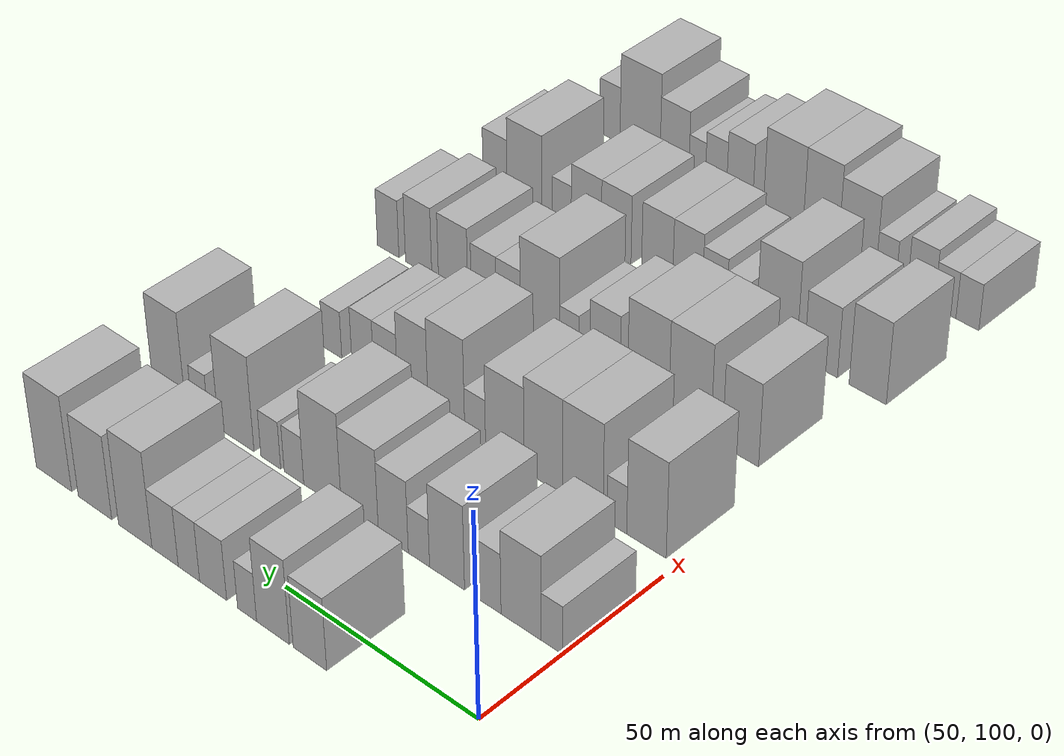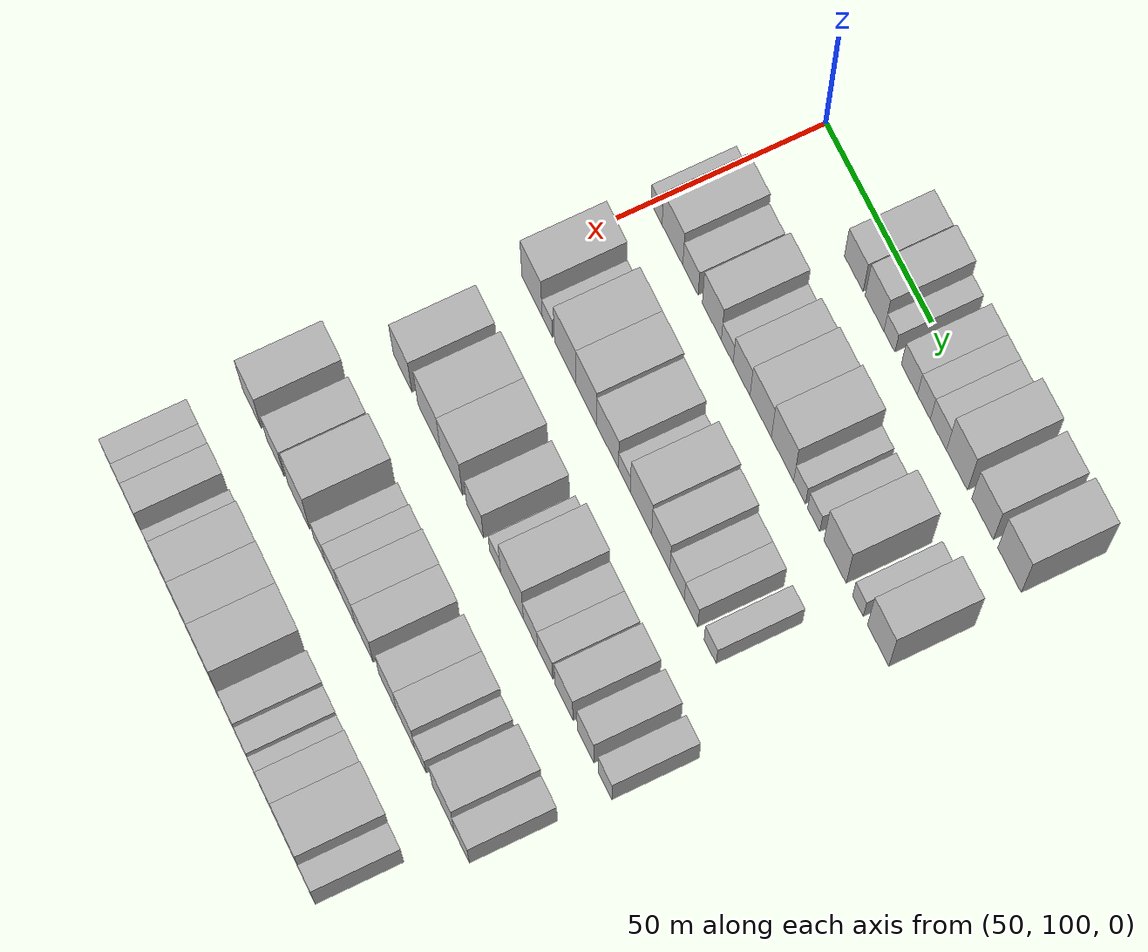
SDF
<sdf version="1.6">
 <world name="default">
  <model name="building_74">
   <static>1</static>
   <pose>50.0000 133.0137 0 0.000000 0.000000 0.000000</pose>
   <link name="link">
    <pose>0 0 9.00 0 0 0</pose>
    <collision name="collision"><geometry><box><size>20.0000 8.8224 18.0000</size></box></geometry></collision>
    <visual name="visual">
     <cast_shadows>0</cast_shadows>
     <geometry><box><size>20.0000 8.8224 18.0000</size></box></geometry>
     <material>
      <script>
       <uri>model://HANNAS_wall/materials/scripts</uri>
       <uri>model://HANNAS_wall/materials/textures</uri>
       <name>vrc/HANNAS_wall</name>
      </script>
     </material>
    </visual>
   </link>
  </model>
  <model name="building_75">
   <static>1</static>
   <pose>50.0000 142.8350 0 0.000000 0.000000 0.000000</pose>
   <link name="link">
    <pose>0 0 10.50 0 0 0</pose>
    <collision name="collision"><geometry><box><size>20.0000 8.8204 21.0000</size></box></geometry></collision>
    <visual name="visual">
     <cast_shadows>0</cast_shadows>
     <geometry><box><size>20.0000 8.8204 21.0000</size></box></geometry>
     <material>
      <script>
       <uri>model://HANNAS_wall/materials/scripts</uri>
       <uri>model://HANNAS_wall/materials/textures</uri>
       <name>vrc/HANNAS_wall</name>
      </script>
     </material>
    </visual>
   </link>
  </model>
  <model name="building_76">
   <static>1</static>
   <pose>50.0000 149.8357 0 0.000000 0.000000 0.000000</pose>
   <link name="link">
    <pose>0 0 6.00 0 0 0</pose>
    <collision name="collision"><geometry><box><size>20.0000 5.1809 12.0000</size></box></geometry></collision>
    <visual name="visual">
     <cast_shadows>0</cast_shadows>
     <geometry><box><size>20.0000 5.1809 12.0000</size></box></geometry>
     <material>
      <script>
       <uri>model://HANNAS_wall/materials/scripts</uri>
       <uri>model://HANNAS_wall/materials/textures</uri>
       <name>vrc/HANNAS_wall</name>
      </script>
     </material>
    </visual>
   </link>
  </model>
  <model name="building_77">
   <static>1</static>
   <pose>50.0000 159.1717 0 0.000000 0.000000 0.000000</pose>
   <link name="link">
    <pose>0 0 7.50 0 0 0</pose>
    <collision name="collision"><geometry><box><size>20.0000 7.4911 15.0000</size></box></geometry></collision>
    <visual name="visual">
     <cast_shadows>0</cast_shadows>
     <geometry><box><size>20.0000 7.4911 15.0000</size></box></geometry>
     <material>
      <script>
       <uri>model://HANNAS_wall/materials/scripts</uri>
       <uri>model://HANNAS_wall/materials/textures</uri>
       <name>vrc/HANNAS_wall</name>
      </script>
     </material>
    </visual>
   </link>
  </model>
  <model name="building_78">
   <static>1</static>
   <pose>50.0000 165.9333 0 0.000000 0.000000 0.000000</pose>
   <link name="link">
    <pose>0 0 7.50 0 0 0</pose>
    <collision name="collision"><geometry><box><size>20.0000 6.0321 15.0000</size></box></geometry></collision>
    <visual name="visual">
     <cast_shadows>0</cast_shadows>
     <geometry><box><size>20.0000 6.0321 15.0000</size></box></geometry>
     <material>
      <script>
       <uri>model://HANNAS_wall/materials/scripts</uri>
       <uri>model://HANNAS_wall/materials/textures</uri>
       <name>vrc/HANNAS_wall</name>
      </script>
     </material>
    </visual>
   </link>
  </model>
  <model name="building_79">
   <static>1</static>
   <pose>50.0000 172.6936 0 0.000000 0.000000 0.000000</pose>
   <link name="link">
    <pose>0 0 7.50 0 0 0</pose>
    <collision name="collision"><geometry><box><size>20.0000 7.4887 15.0000</size></box></geometry></collision>
    <visual name="visual">
     <cast_shadows>0</cast_shadows>
     <geometry><box><size>20.0000 7.4887 15.0000</size></box></geometry>
     <material>
      <script>
       <uri>model://HANNAS_wall/materials/scripts</uri>
       <uri>model://HANNAS_wall/materials/textures</uri>
       <name>vrc/HANNAS_wall</name>
      </script>
     </material>
    </visual>
   </link>
  </model>
  <model name="building_80">
   <static>1</static>
   <pose>50.0000 181.2832 0 0.000000 0.000000 0.000000</pose>
   <link name="link">
    <pose>0 0 12.00 0 0 0</pose>
    <collision name="collision"><geometry><box><size>20.0000 9.6905 24.0000</size></box></geometry></collision>
    <visual name="visual">
     <cast_shadows>0</cast_shadows>
     <geometry><box><size>20.0000 9.6905 24.0000</size></box></geometry>
     <material>
      <script>
       <uri>model://HANNAS_wall/materials/scripts</uri>
       <uri>model://HANNAS_wall/materials/textures</uri>
       <name>vrc/HANNAS_wall</name>
      </script>
     </material>
    </visual>
   </link>
  </model>
  <model name="building_81">
   <static>1</static>
   <pose>50.0000 193.0826 0 0.000000 0.000000 0.000000</pose>
   <link name="link">
    <pose>0 0 10.50 0 0 0</pose>
    <collision name="collision"><geometry><box><size>20.0000 9.9083 21.0000</size></box></geometry></collision>
    <visual name="visual">
     <cast_shadows>0</cast_shadows>
     <geometry><box><size>20.0000 9.9083 21.0000</size></box></geometry>
     <material>
      <script>
       <uri>model://HANNAS_wall/materials/scripts</uri>
       <uri>model://HANNAS_wall/materials/textures</uri>
       <name>vrc/HANNAS_wall</name>
      </script>
     </material>
    </visual>
   </link>
  </model>
  <model name="building_82">
   <static>1</static>
   <pose>50.0000 205.3813 0 0.000000 0.000000 0.000000</pose>
   <link name="link">
    <pose>0 0 12.00 0 0 0</pose>
    <collision name="collision"><geometry><box><size>20.0000 10.6892 24.0000</size></box></geometry></collision>
    <visual name="visual">
     <cast_shadows>0</cast_shadows>
     <geometry><box><size>20.0000 10.6892 24.0000</size></box></geometry>
     <material>
      <script>
       <uri>model://HANNAS_wall/materials/scripts</uri>
       <uri>model://HANNAS_wall/materials/textures</uri>
       <name>vrc/HANNAS_wall</name>
      </script>
     </material>
    </visual>
   </link>
  </model>
  <model name="building_192">
   <static>1</static>
   <pose>82.0000 102.6808 0 0.000000 0.000000 0.000000</pose>
   <link name="link">
    <pose>0 0 6.00 0 0 0</pose>
    <collision name="collision"><geometry><box><size>20.0000 5.3963 12.0000</size></box></geometry></collision>
    <visual name="visual">
     <cast_shadows>0</cast_shadows>
     <geometry><box><size>20.0000 5.3963 12.0000</size></box></geometry>
     <material>
      <script>
       <uri>model://HANNAS_wall/materials/scripts</uri>
       <uri>model://HANNAS_wall/materials/textures</uri>
       <name>vrc/HANNAS_wall</name>
      </script>
     </material>
    </visual>
   </link>
  </model>
  <model name="building_193">
   <static>1</static>
   <pose>82.0000 110.4295 0 0.000000 0.000000 0.000000</pose>
   <link name="link">
    <pose>0 0 10.50 0 0 0</pose>
    <collision name="collision"><geometry><box><size>20.0000 10.1012 21.0000</size></box></geometry></collision>
    <visual name="visual">
     <cast_shadows>0</cast_shadows>
     <geometry><box><size>20.0000 10.1012 21.0000</size></box></geometry>
     <material>
      <script>
       <uri>model://HANNAS_wall/materials/scripts</uri>
       <uri>model://HANNAS_wall/materials/textures</uri>
       <name>vrc/HANNAS_wall</name>
      </script>
     </material>
    </visual>
   </link>
  </model>
  <model name="building_194">
   <static>1</static>
   <pose>82.0000 119.1826 0 0.000000 0.000000 0.000000</pose>
   <link name="link">
    <pose>0 0 7.50 0 0 0</pose>
    <collision name="collision"><geometry><box><size>20.0000 7.4049 15.0000</size></box></geometry></collision>
    <visual name="visual">
     <cast_shadows>0</cast_shadows>
     <geometry><box><size>20.0000 7.4049 15.0000</size></box></geometry>
     <material>
      <script>
       <uri>model://HANNAS_wall/materials/scripts</uri>
       <uri>model://HANNAS_wall/materials/textures</uri>
       <name>vrc/HANNAS_wall</name>
      </script>
     </material>
    </visual>
   </link>
  </model>
  <model name="building_195">
   <static>1</static>
   <pose>82.0000 129.4667 0 0.000000 0.000000 0.000000</pose>
   <link name="link">
    <pose>0 0 10.50 0 0 0</pose>
    <collision name="collision"><geometry><box><size>20.0000 9.1635 21.0000</size></box></geometry></collision>
    <visual name="visual">
     <cast_shadows>0</cast_shadows>
     <geometry><box><size>20.0000 9.1635 21.0000</size></box></geometry>
     <material>
      <script>
       <uri>model://HANNAS_wall/materials/scripts</uri>
       <uri>model://HANNAS_wall/materials/textures</uri>
       <name>vrc/HANNAS_wall</name>
      </script>
     </material>
    </visual>
   </link>
  </model>
  <model name="building_196">
   <static>1</static>
   <pose>82.0000 136.8745 0 0.000000 0.000000 0.000000</pose>
   <link name="link">
    <pose>0 0 6.00 0 0 0</pose>
    <collision name="collision"><geometry><box><size>20.0000 5.6521 12.0000</size></box></geometry></collision>
    <visual name="visual">
     <cast_shadows>0</cast_shadows>
     <geometry><box><size>20.0000 5.6521 12.0000</size></box></geometry>
     <material>
      <script>
       <uri>model://HANNAS_wall/materials/scripts</uri>
       <uri>model://HANNAS_wall/materials/textures</uri>
       <name>vrc/HANNAS_wall</name>
      </script>
     </material>
    </visual>
   </link>
  </model>
  <model name="building_197">
   <static>1</static>
   <pose>82.0000 143.7234 0 0.000000 0.000000 0.000000</pose>
   <link name="link">
    <pose>0 0 9.00 0 0 0</pose>
    <collision name="collision"><geometry><box><size>20.0000 8.0458 18.0000</size></box></geometry></collision>
    <visual name="visual">
     <cast_shadows>0</cast_shadows>
     <geometry><box><size>20.0000 8.0458 18.0000</size></box></geometry>
     <material>
      <script>
       <uri>model://HANNAS_wall/materials/scripts</uri>
       <uri>model://HANNAS_wall/materials/textures</uri>
       <name>vrc/HANNAS_wall</name>
      </script>
     </material>
    </visual>
   </link>
  </model>
  <model name="building_198">
   <static>1</static>
   <pose>82.0000 152.8288 0 0.000000 0.000000 0.000000</pose>
   <link name="link">
    <pose>0 0 10.50 0 0 0</pose>
    <collision name="collision"><geometry><box><size>20.0000 10.1650 21.0000</size></box></geometry></collision>
    <visual name="visual">
     <cast_shadows>0</cast_shadows>
     <geometry><box><size>20.0000 10.1650 21.0000</size></box></geometry>
     <material>
      <script>
       <uri>model://HANNAS_wall/materials/scripts</uri>
       <uri>model://HANNAS_wall/materials/textures</uri>
       <name>vrc/HANNAS_wall</name>
      </script>
     </material>
    </visual>
   </link>
  </model>
  <model name="building_199">
   <static>1</static>
   <pose>82.0000 163.1806 0 0.000000 0.000000 0.000000</pose>
   <link name="link">
    <pose>0 0 12.00 0 0 0</pose>
    <collision name="collision"><geometry><box><size>20.0000 10.5386 24.0000</size></box></geometry></collision>
    <visual name="visual">
     <cast_shadows>0</cast_shadows>
     <geometry><box><size>20.0000 10.5386 24.0000</size></box></geometry>
     <material>
      <script>
       <uri>model://HANNAS_wall/materials/scripts</uri>
       <uri>model://HANNAS_wall/materials/textures</uri>
       <name>vrc/HANNAS_wall</name>
      </script>
     </material>
    </visual>
   </link>
  </model>
  <model name="building_200">
   <static>1</static>
   <pose>82.0000 171.2301 0 0.000000 0.000000 0.000000</pose>
   <link name="link">
    <pose>0 0 6.00 0 0 0</pose>
    <collision name="collision"><geometry><box><size>20.0000 5.5605 12.0000</size></box></geometry></collision>
    <visual name="visual">
     <cast_shadows>0</cast_shadows>
     <geometry><box><size>20.0000 5.5605 12.0000</size></box></geometry>
     <material>
      <script>
       <uri>model://HANNAS_wall/materials/scripts</uri>
       <uri>model://HANNAS_wall/materials/textures</uri>
       <name>vrc/HANNAS_wall</name>
      </script>
     </material>
    </visual>
   </link>
  </model>
  <model name="building_201">
   <static>1</static>
   <pose>82.0000 177.8538 0 0.000000 0.000000 0.000000</pose>
   <link name="link">
    <pose>0 0 6.00 0 0 0</pose>
    <collision name="collision"><geometry><box><size>20.0000 5.6870 12.0000</size></box></geometry></collision>
    <visual name="visual">
     <cast_shadows>0</cast_shadows>
     <geometry><box><size>20.0000 5.6870 12.0000</size></box></geometry>
     <material>
      <script>
       <uri>model://HANNAS_wall/materials/scripts</uri>
       <uri>model://HANNAS_wall/materials/textures</uri>
       <name>vrc/HANNAS_wall</name>
      </script>
     </material>
    </visual>
   </link>
  </model>
  <model name="building_202">
   <static>1</static>
   <pose>82.0000 187.8741 0 0.000000 0.000000 0.000000</pose>
   <link name="link">
    <pose>0 0 12.00 0 0 0</pose>
    <collision name="collision"><geometry><box><size>20.0000 10.3536 24.0000</size></box></geometry></collision>
    <visual name="visual">
     <cast_shadows>0</cast_shadows>
     <geometry><box><size>20.0000 10.3536 24.0000</size></box></geometry>
     <material>
      <script>
       <uri>model://HANNAS_wall/materials/scripts</uri>
       <uri>model://HANNAS_wall/materials/textures</uri>
       <name>vrc/HANNAS_wall</name>
      </script>
     </material>
    </visual>
   </link>
  </model>
  <model name="building_203">
   <static>1</static>
   <pose>82.0000 198.4980 0 0.000000 0.000000 0.000000</pose>
   <link name="link">
    <pose>0 0 6.00 0 0 0</pose>
    <collision name="collision"><geometry><box><size>20.0000 4.8942 12.0000</size></box></geometry></collision>
    <visual name="visual">
     <cast_shadows>0</cast_shadows>
     <geometry><box><size>20.0000 4.8942 12.0000</size></box></geometry>
     <material>
      <script>
       <uri>model://HANNAS_wall/materials/scripts</uri>
       <uri>model://HANNAS_wall/materials/textures</uri>
       <name>vrc/HANNAS_wall</name>
      </script>
     </material>
    </visual>
   </link>
  </model>
  <model name="building_204">
   <static>1</static>
   <pose>82.0000 207.8565 0 0.000000 0.000000 0.000000</pose>
   <link name="link">
    <pose>0 0 12.00 0 0 0</pose>
    <collision name="collision"><geometry><box><size>20.0000 9.8227 24.0000</size></box></geometry></collision>
    <visual name="visual">
     <cast_shadows>0</cast_shadows>
     <geometry><box><size>20.0000 9.8227 24.0000</size></box></geometry>
     <material>
      <script>
       <uri>model://HANNAS_wall/materials/scripts</uri>
       <uri>model://HANNAS_wall/materials/textures</uri>
       <name>vrc/HANNAS_wall</name>
      </script>
     </material>
    </visual>
   </link>
  </model>
  <model name="building_303">
   <static>1</static>
   <pose>114.0000 107.8581 0 0.000000 0.000000 0.000000</pose>
   <link name="link">
    <pose>0 0 12.00 0 0 0</pose>
    <collision name="collision"><geometry><box><size>20.0000 9.9739 24.0000</size></box></geometry></collision>
    <visual name="visual">
     <cast_shadows>0</cast_shadows>
     <geometry><box><size>20.0000 9.9739 24.0000</size></box></geometry>
     <material>
      <script>
       <uri>model://HANNAS_wall/materials/scripts</uri>
       <uri>model://HANNAS_wall/materials/textures</uri>
       <name>vrc/HANNAS_wall</name>
      </script>
     </material>
    </visual>
   </link>
  </model>
  <model name="building_304">
   <static>1</static>
   <pose>114.0000 115.3713 0 0.000000 0.000000 0.000000</pose>
   <link name="link">
    <pose>0 0 6.00 0 0 0</pose>
    <collision name="collision"><geometry><box><size>20.0000 5.0524 12.0000</size></box></geometry></collision>
    <visual name="visual">
     <cast_shadows>0</cast_shadows>
     <geometry><box><size>20.0000 5.0524 12.0000</size></box></geometry>
     <material>
      <script>
       <uri>model://HANNAS_wall/materials/scripts</uri>
       <uri>model://HANNAS_wall/materials/textures</uri>
       <name>vrc/HANNAS_wall</name>
      </script>
     </material>
    </visual>
   </link>
  </model>
  <model name="building_305">
   <static>1</static>
   <pose>114.0000 124.1783 0 0.000000 0.000000 0.000000</pose>
   <link name="link">
    <pose>0 0 12.00 0 0 0</pose>
    <collision name="collision"><geometry><box><size>20.0000 10.5617 24.0000</size></box></geometry></collision>
    <visual name="visual">
     <cast_shadows>0</cast_shadows>
     <geometry><box><size>20.0000 10.5617 24.0000</size></box></geometry>
     <material>
      <script>
       <uri>model://HANNAS_wall/materials/scripts</uri>
       <uri>model://HANNAS_wall/materials/textures</uri>
       <name>vrc/HANNAS_wall</name>
      </script>
     </material>
    </visual>
   </link>
  </model>
  <model name="building_306">
   <static>1</static>
   <pose>114.0000 134.5652 0 0.000000 0.000000 0.000000</pose>
   <link name="link">
    <pose>0 0 12.00 0 0 0</pose>
    <collision name="collision"><geometry><box><size>20.0000 10.2120 24.0000</size></box></geometry></collision>
    <visual name="visual">
     <cast_shadows>0</cast_shadows>
     <geometry><box><size>20.0000 10.2120 24.0000</size></box></geometry>
     <material>
      <script>
       <uri>model://HANNAS_wall/materials/scripts</uri>
       <uri>model://HANNAS_wall/materials/textures</uri>
       <name>vrc/HANNAS_wall</name>
      </script>
     </material>
    </visual>
   </link>
  </model>
  <model name="building_307">
   <static>1</static>
   <pose>114.0000 144.8932 0 0.000000 0.000000 0.000000</pose>
   <link name="link">
    <pose>0 0 10.50 0 0 0</pose>
    <collision name="collision"><geometry><box><size>20.0000 10.4440 21.0000</size></box></geometry></collision>
    <visual name="visual">
     <cast_shadows>0</cast_shadows>
     <geometry><box><size>20.0000 10.4440 21.0000</size></box></geometry>
     <material>
      <script>
       <uri>model://HANNAS_wall/materials/scripts</uri>
       <uri>model://HANNAS_wall/materials/textures</uri>
       <name>vrc/HANNAS_wall</name>
      </script>
     </material>
    </visual>
   </link>
  </model>
  <model name="building_308">
   <static>1</static>
   <pose>114.0000 152.9682 0 0.000000 0.000000 0.000000</pose>
   <link name="link">
    <pose>0 0 6.00 0 0 0</pose>
    <collision name="collision"><geometry><box><size>20.0000 5.7062 12.0000</size></box></geometry></collision>
    <visual name="visual">
     <cast_shadows>0</cast_shadows>
     <geometry><box><size>20.0000 5.7062 12.0000</size></box></geometry>
     <material>
      <script>
       <uri>model://HANNAS_wall/materials/scripts</uri>
       <uri>model://HANNAS_wall/materials/textures</uri>
       <name>vrc/HANNAS_wall</name>
      </script>
     </material>
    </visual>
   </link>
  </model>
  <model name="building_309">
   <static>1</static>
   <pose>114.0000 160.9161 0 0.000000 0.000000 0.000000</pose>
   <link name="link">
    <pose>0 0 12.00 0 0 0</pose>
    <collision name="collision"><geometry><box><size>20.0000 10.1895 24.0000</size></box></geometry></collision>
    <visual name="visual">
     <cast_shadows>0</cast_shadows>
     <geometry><box><size>20.0000 10.1895 24.0000</size></box></geometry>
     <material>
      <script>
       <uri>model://HANNAS_wall/materials/scripts</uri>
       <uri>model://HANNAS_wall/materials/textures</uri>
       <name>vrc/HANNAS_wall</name>
      </script>
     </material>
    </visual>
   </link>
  </model>
  <model name="building_310">
   <static>1</static>
   <pose>114.0000 170.3335 0 0.000000 0.000000 0.000000</pose>
   <link name="link">
    <pose>0 0 10.50 0 0 0</pose>
    <collision name="collision"><geometry><box><size>20.0000 8.6452 21.0000</size></box></geometry></collision>
    <visual name="visual">
     <cast_shadows>0</cast_shadows>
     <geometry><box><size>20.0000 8.6452 21.0000</size></box></geometry>
     <material>
      <script>
       <uri>model://HANNAS_wall/materials/scripts</uri>
       <uri>model://HANNAS_wall/materials/textures</uri>
       <name>vrc/HANNAS_wall</name>
      </script>
     </material>
    </visual>
   </link>
  </model>
  <model name="building_311">
   <static>1</static>
   <pose>114.0000 178.0998 0 0.000000 0.000000 0.000000</pose>
   <link name="link">
    <pose>0 0 7.50 0 0 0</pose>
    <collision name="collision"><geometry><box><size>20.0000 6.8875 15.0000</size></box></geometry></collision>
    <visual name="visual">
     <cast_shadows>0</cast_shadows>
     <geometry><box><size>20.0000 6.8875 15.0000</size></box></geometry>
     <material>
      <script>
       <uri>model://HANNAS_wall/materials/scripts</uri>
       <uri>model://HANNAS_wall/materials/textures</uri>
       <name>vrc/HANNAS_wall</name>
      </script>
     </material>
    </visual>
   </link>
  </model>
  <model name="building_312">
   <static>1</static>
   <pose>114.0000 184.7397 0 0.000000 0.000000 0.000000</pose>
   <link name="link">
    <pose>0 0 7.50 0 0 0</pose>
    <collision name="collision"><geometry><box><size>20.0000 6.3922 15.0000</size></box></geometry></collision>
    <visual name="visual">
     <cast_shadows>0</cast_shadows>
     <geometry><box><size>20.0000 6.3922 15.0000</size></box></geometry>
     <material>
      <script>
       <uri>model://HANNAS_wall/materials/scripts</uri>
       <uri>model://HANNAS_wall/materials/textures</uri>
       <name>vrc/HANNAS_wall</name>
      </script>
     </material>
    </visual>
   </link>
  </model>
  <model name="building_313">
   <static>1</static>
   <pose>114.0000 193.7819 0 0.000000 0.000000 0.000000</pose>
   <link name="link">
    <pose>0 0 6.00 0 0 0</pose>
    <collision name="collision"><geometry><box><size>20.0000 5.6922 12.0000</size></box></geometry></collision>
    <visual name="visual">
     <cast_shadows>0</cast_shadows>
     <geometry><box><size>20.0000 5.6922 12.0000</size></box></geometry>
     <material>
      <script>
       <uri>model://HANNAS_wall/materials/scripts</uri>
       <uri>model://HANNAS_wall/materials/textures</uri>
       <name>vrc/HANNAS_wall</name>
      </script>
     </material>
    </visual>
   </link>
  </model>
  <model name="building_411">
   <static>1</static>
   <pose>146.0000 111.3064 0 0.000000 0.000000 0.000000</pose>
   <link name="link">
    <pose>0 0 10.50 0 0 0</pose>
    <collision name="collision"><geometry><box><size>20.0000 9.2557 21.0000</size></box></geometry></collision>
    <visual name="visual">
     <cast_shadows>0</cast_shadows>
     <geometry><box><size>20.0000 9.2557 21.0000</size></box></geometry>
     <material>
      <script>
       <uri>model://HANNAS_wall/materials/scripts</uri>
       <uri>model://HANNAS_wall/materials/textures</uri>
       <name>vrc/HANNAS_wall</name>
      </script>
     </material>
    </visual>
   </link>
  </model>
  <model name="building_412">
   <static>1</static>
   <pose>146.0000 124.4808 0 0.000000 0.000000 0.000000</pose>
   <link name="link">
    <pose>0 0 12.00 0 0 0</pose>
    <collision name="collision"><geometry><box><size>20.0000 11.0932 24.0000</size></box></geometry></collision>
    <visual name="visual">
     <cast_shadows>0</cast_shadows>
     <geometry><box><size>20.0000 11.0932 24.0000</size></box></geometry>
     <material>
      <script>
       <uri>model://HANNAS_wall/materials/scripts</uri>
       <uri>model://HANNAS_wall/materials/textures</uri>
       <name>vrc/HANNAS_wall</name>
      </script>
     </material>
    </visual>
   </link>
  </model>
  <model name="building_413">
   <static>1</static>
   <pose>146.0000 135.5241 0 0.000000 0.000000 0.000000</pose>
   <link name="link">
    <pose>0 0 12.00 0 0 0</pose>
    <collision name="collision"><geometry><box><size>20.0000 10.9934 24.0000</size></box></geometry></collision>
    <visual name="visual">
     <cast_shadows>0</cast_shadows>
     <geometry><box><size>20.0000 10.9934 24.0000</size></box></geometry>
     <material>
      <script>
       <uri>model://HANNAS_wall/materials/scripts</uri>
       <uri>model://HANNAS_wall/materials/textures</uri>
       <name>vrc/HANNAS_wall</name>
      </script>
     </material>
    </visual>
   </link>
  </model>
  <model name="building_414">
   <static>1</static>
   <pose>146.0000 147.1641 0 0.000000 0.000000 0.000000</pose>
   <link name="link">
    <pose>0 0 9.00 0 0 0</pose>
    <collision name="collision"><geometry><box><size>20.0000 8.2865 18.0000</size></box></geometry></collision>
    <visual name="visual">
     <cast_shadows>0</cast_shadows>
     <geometry><box><size>20.0000 8.2865 18.0000</size></box></geometry>
     <material>
      <script>
       <uri>model://HANNAS_wall/materials/scripts</uri>
       <uri>model://HANNAS_wall/materials/textures</uri>
       <name>vrc/HANNAS_wall</name>
      </script>
     </material>
    </visual>
   </link>
  </model>
  <model name="building_415">
   <static>1</static>
   <pose>146.0000 157.0046 0 0.000000 0.000000 0.000000</pose>
   <link name="link">
    <pose>0 0 6.00 0 0 0</pose>
    <collision name="collision"><geometry><box><size>20.0000 5.3944 12.0000</size></box></geometry></collision>
    <visual name="visual">
     <cast_shadows>0</cast_shadows>
     <geometry><box><size>20.0000 5.3944 12.0000</size></box></geometry>
     <material>
      <script>
       <uri>model://HANNAS_wall/materials/scripts</uri>
       <uri>model://HANNAS_wall/materials/textures</uri>
       <name>vrc/HANNAS_wall</name>
      </script>
     </material>
    </visual>
   </link>
  </model>
  <model name="building_416">
   <static>1</static>
   <pose>146.0000 165.2286 0 0.000000 0.000000 0.000000</pose>
   <link name="link">
    <pose>0 0 12.00 0 0 0</pose>
    <collision name="collision"><geometry><box><size>20.0000 11.0537 24.0000</size></box></geometry></collision>
    <visual name="visual">
     <cast_shadows>0</cast_shadows>
     <geometry><box><size>20.0000 11.0537 24.0000</size></box></geometry>
     <material>
      <script>
       <uri>model://HANNAS_wall/materials/scripts</uri>
       <uri>model://HANNAS_wall/materials/textures</uri>
       <name>vrc/HANNAS_wall</name>
      </script>
     </material>
    </visual>
   </link>
  </model>
  <model name="building_417">
   <static>1</static>
   <pose>146.0000 174.2040 0 0.000000 0.000000 0.000000</pose>
   <link name="link">
    <pose>0 0 7.50 0 0 0</pose>
    <collision name="collision"><geometry><box><size>20.0000 6.8971 15.0000</size></box></geometry></collision>
    <visual name="visual">
     <cast_shadows>0</cast_shadows>
     <geometry><box><size>20.0000 6.8971 15.0000</size></box></geometry>
     <material>
      <script>
       <uri>model://HANNAS_wall/materials/scripts</uri>
       <uri>model://HANNAS_wall/materials/textures</uri>
       <name>vrc/HANNAS_wall</name>
      </script>
     </material>
    </visual>
   </link>
  </model>
  <model name="building_418">
   <static>1</static>
   <pose>146.0000 181.2807 0 0.000000 0.000000 0.000000</pose>
   <link name="link">
    <pose>0 0 7.50 0 0 0</pose>
    <collision name="collision"><geometry><box><size>20.0000 7.2561 15.0000</size></box></geometry></collision>
    <visual name="visual">
     <cast_shadows>0</cast_shadows>
     <geometry><box><size>20.0000 7.2561 15.0000</size></box></geometry>
     <material>
      <script>
       <uri>model://HANNAS_wall/materials/scripts</uri>
       <uri>model://HANNAS_wall/materials/textures</uri>
       <name>vrc/HANNAS_wall</name>
      </script>
     </material>
    </visual>
   </link>
  </model>
  <model name="building_419">
   <static>1</static>
   <pose>146.0000 190.2460 0 0.000000 0.000000 0.000000</pose>
   <link name="link">
    <pose>0 0 9.00 0 0 0</pose>
    <collision name="collision"><geometry><box><size>20.0000 8.6746 18.0000</size></box></geometry></collision>
    <visual name="visual">
     <cast_shadows>0</cast_shadows>
     <geometry><box><size>20.0000 8.6746 18.0000</size></box></geometry>
     <material>
      <script>
       <uri>model://HANNAS_wall/materials/scripts</uri>
       <uri>model://HANNAS_wall/materials/textures</uri>
       <name>vrc/HANNAS_wall</name>
      </script>
     </material>
    </visual>
   </link>
  </model>
  <model name="building_420">
   <static>1</static>
   <pose>146.0000 200.5320 0 0.000000 0.000000 0.000000</pose>
   <link name="link">
    <pose>0 0 9.00 0 0 0</pose>
    <collision name="collision"><geometry><box><size>20.0000 7.8972 18.0000</size></box></geometry></collision>
    <visual name="visual">
     <cast_shadows>0</cast_shadows>
     <geometry><box><size>20.0000 7.8972 18.0000</size></box></geometry>
     <material>
      <script>
       <uri>model://HANNAS_wall/materials/scripts</uri>
       <uri>model://HANNAS_wall/materials/textures</uri>
       <name>vrc/HANNAS_wall</name>
      </script>
     </material>
    </visual>
   </link>
  </model>
  <model name="building_421">
   <static>1</static>
   <pose>146.0000 209.7532 0 0.000000 0.000000 0.000000</pose>
   <link name="link">
    <pose>0 0 7.50 0 0 0</pose>
    <collision name="collision"><geometry><box><size>20.0000 6.5452 15.0000</size></box></geometry></collision>
    <visual name="visual">
     <cast_shadows>0</cast_shadows>
     <geometry><box><size>20.0000 6.5452 15.0000</size></box></geometry>
     <material>
      <script>
       <uri>model://HANNAS_wall/materials/scripts</uri>
       <uri>model://HANNAS_wall/materials/textures</uri>
       <name>vrc/HANNAS_wall</name>
      </script>
     </material>
    </visual>
   </link>
  </model>
  <model name="building_527">
   <static>1</static>
   <pose>178.0000 104.5770 0 0.000000 0.000000 0.000000</pose>
   <link name="link">
    <pose>0 0 10.50 0 0 0</pose>
    <collision name="collision"><geometry><box><size>20.0000 9.4850 21.0000</size></box></geometry></collision>
    <visual name="visual">
     <cast_shadows>0</cast_shadows>
     <geometry><box><size>20.0000 9.4850 21.0000</size></box></geometry>
     <material>
      <script>
       <uri>model://HANNAS_wall/materials/scripts</uri>
       <uri>model://HANNAS_wall/materials/textures</uri>
       <name>vrc/HANNAS_wall</name>
      </script>
     </material>
    </visual>
   </link>
  </model>
  <model name="building_528">
   <static>1</static>
   <pose>178.0000 116.6459 0 0.000000 0.000000 0.000000</pose>
   <link name="link">
    <pose>0 0 9.00 0 0 0</pose>
    <collision name="collision"><geometry><box><size>20.0000 8.6529 18.0000</size></box></geometry></collision>
    <visual name="visual">
     <cast_shadows>0</cast_shadows>
     <geometry><box><size>20.0000 8.6529 18.0000</size></box></geometry>
     <material>
      <script>
       <uri>model://HANNAS_wall/materials/scripts</uri>
       <uri>model://HANNAS_wall/materials/textures</uri>
       <name>vrc/HANNAS_wall</name>
      </script>
     </material>
    </visual>
   </link>
  </model>
  <model name="building_529">
   <static>1</static>
   <pose>178.0000 128.3835 0 0.000000 0.000000 0.000000</pose>
   <link name="link">
    <pose>0 0 12.00 0 0 0</pose>
    <collision name="collision"><geometry><box><size>20.0000 10.8223 24.0000</size></box></geometry></collision>
    <visual name="visual">
     <cast_shadows>0</cast_shadows>
     <geometry><box><size>20.0000 10.8223 24.0000</size></box></geometry>
     <material>
      <script>
       <uri>model://HANNAS_wall/materials/scripts</uri>
       <uri>model://HANNAS_wall/materials/textures</uri>
       <name>vrc/HANNAS_wall</name>
      </script>
     </material>
    </visual>
   </link>
  </model>
  <model name="building_530">
   <static>1</static>
   <pose>178.0000 138.7907 0 0.000000 0.000000 0.000000</pose>
   <link name="link">
    <pose>0 0 6.00 0 0 0</pose>
    <collision name="collision"><geometry><box><size>20.0000 5.9921 12.0000</size></box></geometry></collision>
    <visual name="visual">
     <cast_shadows>0</cast_shadows>
     <geometry><box><size>20.0000 5.9921 12.0000</size></box></geometry>
     <material>
      <script>
       <uri>model://HANNAS_wall/materials/scripts</uri>
       <uri>model://HANNAS_wall/materials/textures</uri>
       <name>vrc/HANNAS_wall</name>
      </script>
     </material>
    </visual>
   </link>
  </model>
  <model name="building_531">
   <static>1</static>
   <pose>178.0000 145.1191 0 0.000000 0.000000 0.000000</pose>
   <link name="link">
    <pose>0 0 7.50 0 0 0</pose>
    <collision name="collision"><geometry><box><size>20.0000 6.6646 15.0000</size></box></geometry></collision>
    <visual name="visual">
     <cast_shadows>0</cast_shadows>
     <geometry><box><size>20.0000 6.6646 15.0000</size></box></geometry>
     <material>
      <script>
       <uri>model://HANNAS_wall/materials/scripts</uri>
       <uri>model://HANNAS_wall/materials/textures</uri>
       <name>vrc/HANNAS_wall</name>
      </script>
     </material>
    </visual>
   </link>
  </model>
  <model name="building_532">
   <static>1</static>
   <pose>178.0000 152.5653 0 0.000000 0.000000 0.000000</pose>
   <link name="link">
    <pose>0 0 9.00 0 0 0</pose>
    <collision name="collision"><geometry><box><size>20.0000 8.2279 18.0000</size></box></geometry></collision>
    <visual name="visual">
     <cast_shadows>0</cast_shadows>
     <geometry><box><size>20.0000 8.2279 18.0000</size></box></geometry>
     <material>
      <script>
       <uri>model://HANNAS_wall/materials/scripts</uri>
       <uri>model://HANNAS_wall/materials/textures</uri>
       <name>vrc/HANNAS_wall</name>
      </script>
     </material>
    </visual>
   </link>
  </model>
  <model name="building_533">
   <static>1</static>
   <pose>178.0000 161.0480 0 0.000000 0.000000 0.000000</pose>
   <link name="link">
    <pose>0 0 9.00 0 0 0</pose>
    <collision name="collision"><geometry><box><size>20.0000 8.7376 18.0000</size></box></geometry></collision>
    <visual name="visual">
     <cast_shadows>0</cast_shadows>
     <geometry><box><size>20.0000 8.7376 18.0000</size></box></geometry>
     <material>
      <script>
       <uri>model://HANNAS_wall/materials/scripts</uri>
       <uri>model://HANNAS_wall/materials/textures</uri>
       <name>vrc/HANNAS_wall</name>
      </script>
     </material>
    </visual>
   </link>
  </model>
  <model name="building_534">
   <static>1</static>
   <pose>178.0000 172.7022 0 0.000000 0.000000 0.000000</pose>
   <link name="link">
    <pose>0 0 9.00 0 0 0</pose>
    <collision name="collision"><geometry><box><size>20.0000 8.5707 18.0000</size></box></geometry></collision>
    <visual name="visual">
     <cast_shadows>0</cast_shadows>
     <geometry><box><size>20.0000 8.5707 18.0000</size></box></geometry>
     <material>
      <script>
       <uri>model://HANNAS_wall/materials/scripts</uri>
       <uri>model://HANNAS_wall/materials/textures</uri>
       <name>vrc/HANNAS_wall</name>
      </script>
     </material>
    </visual>
   </link>
  </model>
  <model name="building_535">
   <static>1</static>
   <pose>178.0000 181.3693 0 0.000000 0.000000 0.000000</pose>
   <link name="link">
    <pose>0 0 9.00 0 0 0</pose>
    <collision name="collision"><geometry><box><size>20.0000 8.7636 18.0000</size></box></geometry></collision>
    <visual name="visual">
     <cast_shadows>0</cast_shadows>
     <geometry><box><size>20.0000 8.7636 18.0000</size></box></geometry>
     <material>
      <script>
       <uri>model://HANNAS_wall/materials/scripts</uri>
       <uri>model://HANNAS_wall/materials/textures</uri>
       <name>vrc/HANNAS_wall</name>
      </script>
     </material>
    </visual>
   </link>
  </model>
  <model name="building_536">
   <static>1</static>
   <pose>178.0000 188.5905 0 0.000000 0.000000 0.000000</pose>
   <link name="link">
    <pose>0 0 6.00 0 0 0</pose>
    <collision name="collision"><geometry><box><size>20.0000 5.6788 12.0000</size></box></geometry></collision>
    <visual name="visual">
     <cast_shadows>0</cast_shadows>
     <geometry><box><size>20.0000 5.6788 12.0000</size></box></geometry>
     <material>
      <script>
       <uri>model://HANNAS_wall/materials/scripts</uri>
       <uri>model://HANNAS_wall/materials/textures</uri>
       <name>vrc/HANNAS_wall</name>
      </script>
     </material>
    </visual>
   </link>
  </model>
  <model name="building_537">
   <static>1</static>
   <pose>178.0000 199.6415 0 0.000000 0.000000 0.000000</pose>
   <link name="link">
    <pose>0 0 10.50 0 0 0</pose>
    <collision name="collision"><geometry><box><size>20.0000 10.4233 21.0000</size></box></geometry></collision>
    <visual name="visual">
     <cast_shadows>0</cast_shadows>
     <geometry><box><size>20.0000 10.4233 21.0000</size></box></geometry>
     <material>
      <script>
       <uri>model://HANNAS_wall/materials/scripts</uri>
       <uri>model://HANNAS_wall/materials/textures</uri>
       <name>vrc/HANNAS_wall</name>
      </script>
     </material>
    </visual>
   </link>
  </model>
  <model name="building_538">
   <static>1</static>
   <pose>178.0000 208.5240 0 0.000000 0.000000 0.000000</pose>
   <link name="link">
    <pose>0 0 7.50 0 0 0</pose>
    <collision name="collision"><geometry><box><size>20.0000 7.3417 15.0000</size></box></geometry></collision>
    <visual name="visual">
     <cast_shadows>0</cast_shadows>
     <geometry><box><size>20.0000 7.3417 15.0000</size></box></geometry>
     <material>
      <script>
       <uri>model://HANNAS_wall/materials/scripts</uri>
       <uri>model://HANNAS_wall/materials/textures</uri>
       <name>vrc/HANNAS_wall</name>
      </script>
     </material>
    </visual>
   </link>
  </model>
  <model name="building_637">
   <static>1</static>
   <pose>210.0000 103.2522 0 0.000000 0.000000 0.000000</pose>
   <link name="link">
    <pose>0 0 6.00 0 0 0</pose>
    <collision name="collision"><geometry><box><size>20.0000 5.8967 12.0000</size></box></geometry></collision>
    <visual name="visual">
     <cast_shadows>0</cast_shadows>
     <geometry><box><size>20.0000 5.8967 12.0000</size></box></geometry>
     <material>
      <script>
       <uri>model://HANNAS_wall/materials/scripts</uri>
       <uri>model://HANNAS_wall/materials/textures</uri>
       <name>vrc/HANNAS_wall</name>
      </script>
     </material>
    </visual>
   </link>
  </model>
  <model name="building_638">
   <static>1</static>
   <pose>210.0000 108.9909 0 0.000000 0.000000 0.000000</pose>
   <link name="link">
    <pose>0 0 6.00 0 0 0</pose>
    <collision name="collision"><geometry><box><size>20.0000 5.5807 12.0000</size></box></geometry></collision>
    <visual name="visual">
     <cast_shadows>0</cast_shadows>
     <geometry><box><size>20.0000 5.5807 12.0000</size></box></geometry>
     <material>
      <script>
       <uri>model://HANNAS_wall/materials/scripts</uri>
       <uri>model://HANNAS_wall/materials/textures</uri>
       <name>vrc/HANNAS_wall</name>
      </script>
     </material>
    </visual>
   </link>
  </model>
  <model name="building_639">
   <static>1</static>
   <pose>210.0000 115.3692 0 0.000000 0.000000 0.000000</pose>
   <link name="link">
    <pose>0 0 7.50 0 0 0</pose>
    <collision name="collision"><geometry><box><size>20.0000 7.1759 15.0000</size></box></geometry></collision>
    <visual name="visual">
     <cast_shadows>0</cast_shadows>
     <geometry><box><size>20.0000 7.1759 15.0000</size></box></geometry>
     <material>
      <script>
       <uri>model://HANNAS_wall/materials/scripts</uri>
       <uri>model://HANNAS_wall/materials/textures</uri>
       <name>vrc/HANNAS_wall</name>
      </script>
     </material>
    </visual>
   </link>
  </model>
  <model name="building_640">
   <static>1</static>
   <pose>210.0000 124.6205 0 0.000000 0.000000 0.000000</pose>
   <link name="link">
    <pose>0 0 6.00 0 0 0</pose>
    <collision name="collision"><geometry><box><size>20.0000 5.3267 12.0000</size></box></geometry></collision>
    <visual name="visual">
     <cast_shadows>0</cast_shadows>
     <geometry><box><size>20.0000 5.3267 12.0000</size></box></geometry>
     <material>
      <script>
       <uri>model://HANNAS_wall/materials/scripts</uri>
       <uri>model://HANNAS_wall/materials/textures</uri>
       <name>vrc/HANNAS_wall</name>
      </script>
     </material>
    </visual>
   </link>
  </model>
  <model name="building_641">
   <static>1</static>
   <pose>210.0000 132.4170 0 0.000000 0.000000 0.000000</pose>
   <link name="link">
    <pose>0 0 10.50 0 0 0</pose>
    <collision name="collision"><geometry><box><size>20.0000 10.2663 21.0000</size></box></geometry></collision>
    <visual name="visual">
     <cast_shadows>0</cast_shadows>
     <geometry><box><size>20.0000 10.2663 21.0000</size></box></geometry>
     <material>
      <script>
       <uri>model://HANNAS_wall/materials/scripts</uri>
       <uri>model://HANNAS_wall/materials/textures</uri>
       <name>vrc/HANNAS_wall</name>
      </script>
     </material>
    </visual>
   </link>
  </model>
  <model name="building_642">
   <static>1</static>
   <pose>210.0000 142.4078 0 0.000000 0.000000 0.000000</pose>
   <link name="link">
    <pose>0 0 12.00 0 0 0</pose>
    <collision name="collision"><geometry><box><size>20.0000 9.7152 24.0000</size></box></geometry></collision>
    <visual name="visual">
     <cast_shadows>0</cast_shadows>
     <geometry><box><size>20.0000 9.7152 24.0000</size></box></geometry>
     <material>
      <script>
       <uri>model://HANNAS_wall/materials/scripts</uri>
       <uri>model://HANNAS_wall/materials/textures</uri>
       <name>vrc/HANNAS_wall</name>
      </script>
     </material>
    </visual>
   </link>
  </model>
  <model name="building_643">
   <static>1</static>
   <pose>210.0000 152.7871 0 0.000000 0.000000 0.000000</pose>
   <link name="link">
    <pose>0 0 12.00 0 0 0</pose>
    <collision name="collision"><geometry><box><size>20.0000 11.0433 24.0000</size></box></geometry></collision>
    <visual name="visual">
     <cast_shadows>0</cast_shadows>
     <geometry><box><size>20.0000 11.0433 24.0000</size></box></geometry>
     <material>
      <script>
       <uri>model://HANNAS_wall/materials/scripts</uri>
       <uri>model://HANNAS_wall/materials/textures</uri>
       <name>vrc/HANNAS_wall</name>
      </script>
     </material>
    </visual>
   </link>
  </model>
  <model name="building_644">
   <static>1</static>
   <pose>210.0000 165.0350 0 0.000000 0.000000 0.000000</pose>
   <link name="link">
    <pose>0 0 9.00 0 0 0</pose>
    <collision name="collision"><geometry><box><size>20.0000 7.4524 18.0000</size></box></geometry></collision>
    <visual name="visual">
     <cast_shadows>0</cast_shadows>
     <geometry><box><size>20.0000 7.4524 18.0000</size></box></geometry>
     <material>
      <script>
       <uri>model://HANNAS_wall/materials/scripts</uri>
       <uri>model://HANNAS_wall/materials/textures</uri>
       <name>vrc/HANNAS_wall</name>
      </script>
     </material>
    </visual>
   </link>
  </model>
  <model name="building_645">
   <static>1</static>
   <pose>210.0000 171.8113 0 0.000000 0.000000 0.000000</pose>
   <link name="link">
    <pose>0 0 7.50 0 0 0</pose>
    <collision name="collision"><geometry><box><size>20.0000 6.1003 15.0000</size></box></geometry></collision>
    <visual name="visual">
     <cast_shadows>0</cast_shadows>
     <geometry><box><size>20.0000 6.1003 15.0000</size></box></geometry>
     <material>
      <script>
       <uri>model://HANNAS_wall/materials/scripts</uri>
       <uri>model://HANNAS_wall/materials/textures</uri>
       <name>vrc/HANNAS_wall</name>
      </script>
     </material>
    </visual>
   </link>
  </model>
  <model name="building_646">
   <static>1</static>
   <pose>210.0000 177.2623 0 0.000000 0.000000 0.000000</pose>
   <link name="link">
    <pose>0 0 6.00 0 0 0</pose>
    <collision name="collision"><geometry><box><size>20.0000 4.8016 12.0000</size></box></geometry></collision>
    <visual name="visual">
     <cast_shadows>0</cast_shadows>
     <geometry><box><size>20.0000 4.8016 12.0000</size></box></geometry>
     <material>
      <script>
       <uri>model://HANNAS_wall/materials/scripts</uri>
       <uri>model://HANNAS_wall/materials/textures</uri>
       <name>vrc/HANNAS_wall</name>
      </script>
     </material>
    </visual>
   </link>
  </model>
  <model name="building_647">
   <static>1</static>
   <pose>210.0000 183.8946 0 0.000000 0.000000 0.000000</pose>
   <link name="link">
    <pose>0 0 9.00 0 0 0</pose>
    <collision name="collision"><geometry><box><size>20.0000 8.4630 18.0000</size></box></geometry></collision>
    <visual name="visual">
     <cast_shadows>0</cast_shadows>
     <geometry><box><size>20.0000 8.4630 18.0000</size></box></geometry>
     <material>
      <script>
       <uri>model://HANNAS_wall/materials/scripts</uri>
       <uri>model://HANNAS_wall/materials/textures</uri>
       <name>vrc/HANNAS_wall</name>
      </script>
     </material>
    </visual>
   </link>
  </model>
  <model name="building_648">
   <static>1</static>
   <pose>210.0000 194.1016 0 0.000000 0.000000 0.000000</pose>
   <link name="link">
    <pose>0 0 12.00 0 0 0</pose>
    <collision name="collision"><geometry><box><size>20.0000 11.9509 24.0000</size></box></geometry></collision>
    <visual name="visual">
     <cast_shadows>0</cast_shadows>
     <geometry><box><size>20.0000 11.9509 24.0000</size></box></geometry>
     <material>
      <script>
       <uri>model://HANNAS_wall/materials/scripts</uri>
       <uri>model://HANNAS_wall/materials/textures</uri>
       <name>vrc/HANNAS_wall</name>
      </script>
     </material>
    </visual>
   </link>
  </model>
  <model name="building_649">
   <static>1</static>
   <pose>210.0000 203.1391 0 0.000000 0.000000 0.000000</pose>
   <link name="link">
    <pose>0 0 7.50 0 0 0</pose>
    <collision name="collision"><geometry><box><size>20.0000 6.1243 15.0000</size></box></geometry></collision>
    <visual name="visual">
     <cast_shadows>0</cast_shadows>
     <geometry><box><size>20.0000 6.1243 15.0000</size></box></geometry>
     <material>
      <script>
       <uri>model://HANNAS_wall/materials/scripts</uri>
       <uri>model://HANNAS_wall/materials/textures</uri>
       <name>vrc/HANNAS_wall</name>
      </script>
     </material>
    </visual>
   </link>
  </model>
 </world>
</sdf>
